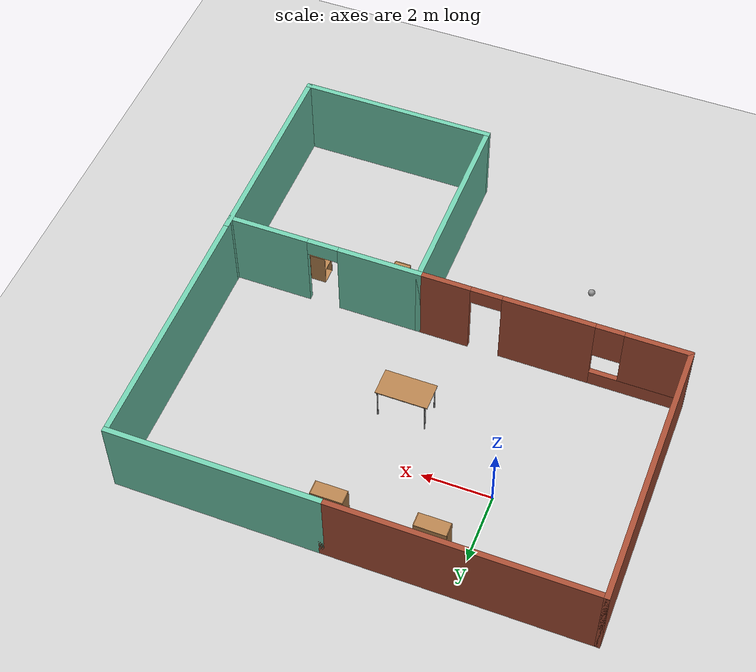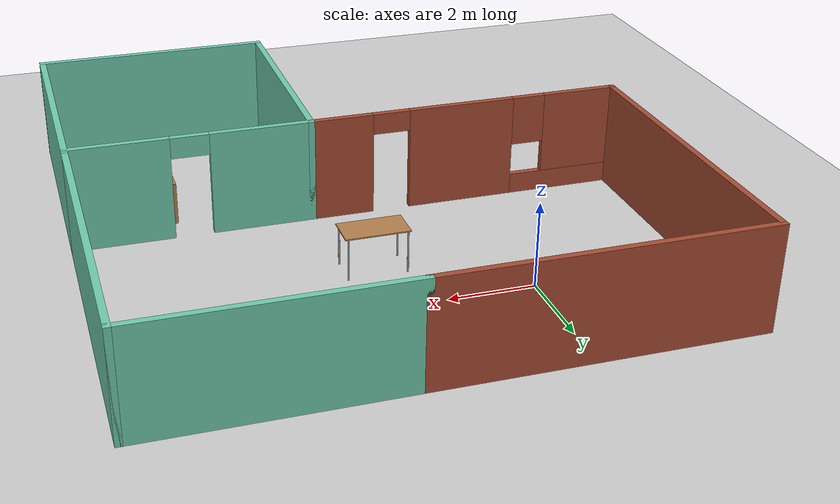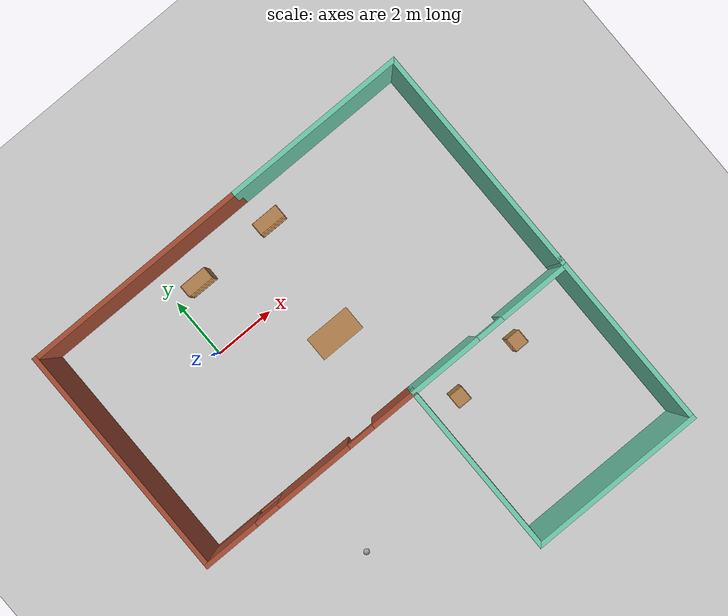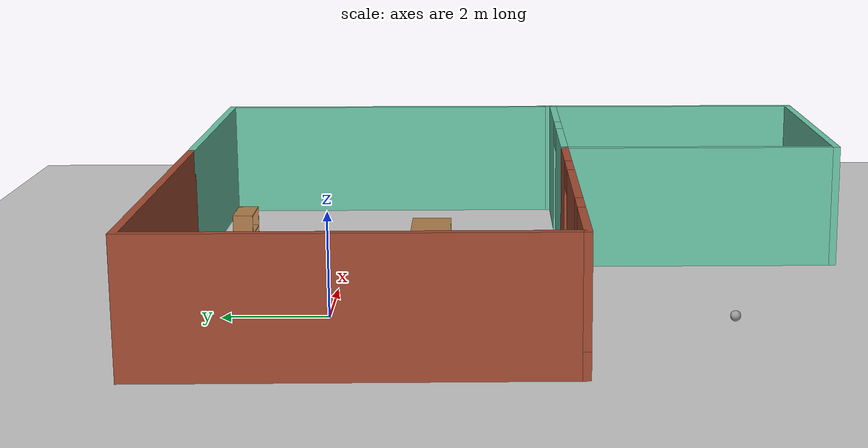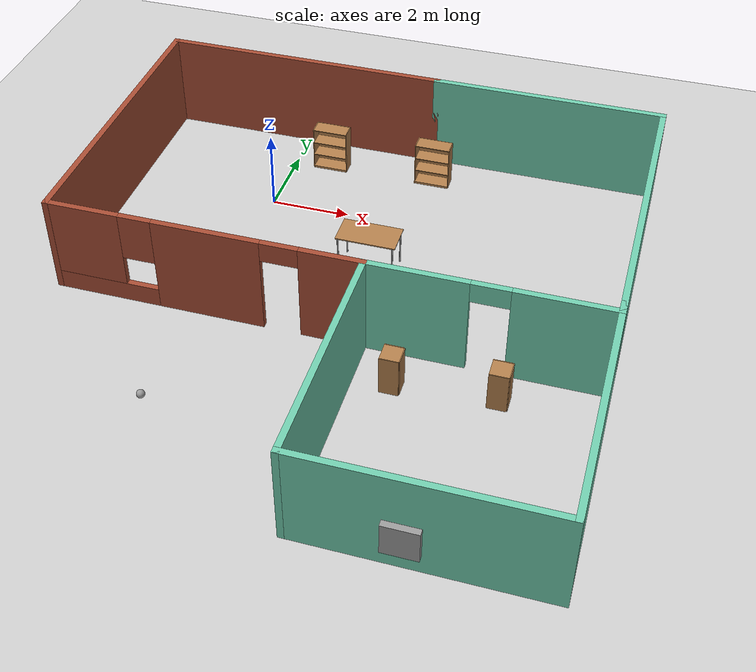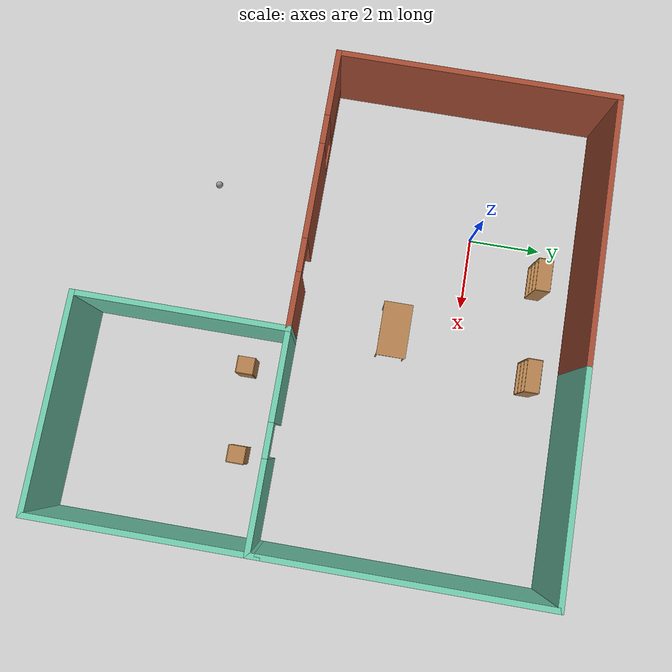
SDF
<sdf version="1.6">
 <world name="default">
  <plugin name="hello" filename="libhello.so"/>
  <light name="sun" type="directional">
   <pose>0 0 10 0 -0 0</pose>
   <diffuse>0.8 0.8 0.8 1</diffuse>
   <specular>0.2 0.2 0.2 1</specular>
   <attenuation>
    <range>1000</range>
    <constant>0.9</constant>
    <linear>0.01</linear>
    <quadratic>0.001</quadratic>
   </attenuation>
   <direction>-0.5 0.1 -0.9</direction>
  </light>
  <model name="ground_plane">
   <static>1</static>
   <link name="link">
    <collision name="collision">
     <geometry><plane><normal>0 0 1</normal><size>100 100</size></plane></geometry>
     <surface>
      <contact><collide_bitmask>65535</collide_bitmask></contact>
      <friction><ode><mu>100</mu><mu2>50</mu2></ode></friction>
     </surface>
    </collision>
    <visual name="visual">
     <cast_shadows>0</cast_shadows>
     <geometry><plane><normal>0 0 1</normal><size>100 100</size></plane></geometry>
     <material>
      <script><uri>file://media/materials/scripts/gazebo.material</uri><name>Gazebo/Grey</name></script>
     </material>
    </visual>
   </link>
  </model>
  <gravity>0 0 -9.8</gravity>
  <magnetic_field>6e-06 2.3e-05 -4.2e-05</magnetic_field>
  <atmosphere type="adiabatic"/>
  <physics name="default_physics" default="0" type="ode">
   <max_step_size>0.001</max_step_size>
   <real_time_factor>1</real_time_factor>
   <real_time_update_rate>1000</real_time_update_rate>
  </physics>
  <scene><ambient>0.4 0.4 0.4 1</ambient><background>0.7 0.7 0.7 1</background><shadows>1</shadows></scene>
  <audio><device>default</device></audio>
  <spherical_coordinates>
   <surface_model>EARTH_WGS84</surface_model>
   <latitude_deg>0</latitude_deg>
   <longitude_deg>0</longitude_deg>
   <elevation>0</elevation>
   <heading_deg>0</heading_deg>
  </spherical_coordinates>
  <model name="Building">
   <link name="Wall_0">
    <pose>-2.925 6.6 0 0 -0 0</pose>
    <visual name="Wall_0_Visual">
     <pose>0 0 1.25 0 -0 0</pose>
     <geometry><box><size>7.5 0.15 2.5</size></box></geometry>
     <material>
      <script><uri>file://media/materials/scripts/gazebo.material</uri><name>Gazebo/Bricks</name></script>
      <ambient>1 1 1 1</ambient>
     </material>
     <meta><layer>0</layer></meta>
    </visual>
    <collision name="Wall_0_Collision">
     <pose>0 0 1.25 0 -0 0</pose>
     <geometry><box><size>7.5 0.15 2.5</size></box></geometry>
     <surface>
      <friction>
       <ode><mu>1</mu><mu2>1</mu2><fdir1>0 0 0</fdir1><slip1>0</slip1><slip2>0</slip2></ode>
       <torsional>
        <coefficient>1</coefficient>
        <patch_radius>0</patch_radius>
        <surface_radius>0</surface_radius>
        <use_patch_radius>1</use_patch_radius>
        <ode><slip>0</slip></ode>
       </torsional>
      </friction>
      <bounce><restitution_coefficient>0</restitution_coefficient><threshold>1e+06</threshold></bounce>
      <contact>
       <collide_without_contact>0</collide_without_contact>
       <collide_without_contact_bitmask>1</collide_without_contact_bitmask>
       <collide_bitmask>1</collide_bitmask>
       <ode>
        <soft_cfm>0</soft_cfm>
        <soft_erp>0.2</soft_erp>
        <kp>1e+13</kp>
        <kd>1</kd>
        <max_vel>0.01</max_vel>
        <min_depth>0</min_depth>
       </ode>
       <bullet>
        <split_impulse>1</split_impulse>
        <split_impulse_penetration_threshold>-0.01</split_impulse_penetration_threshold>
        <soft_cfm>0</soft_cfm>
        <soft_erp>0.2</soft_erp>
        <kp>1e+13</kp>
        <kd>1</kd>
       </bullet>
      </contact>
     </surface>
    </collision>
   </link>
   <link name="Wall_1">
    <pose>3.675 6.6 0 0 -0 0</pose>
    <visual name="Wall_1_Visual">
     <pose>0 0 1.25 0 -0 0</pose>
     <geometry><box><size>6 0.15 2.5</size></box></geometry>
     <material>
      <script><uri>file://media/materials/scripts/gazebo.material</uri><name>Gazebo/Grey</name></script>
      <ambient>0.435294 0.796078 0.67451 1</ambient>
     </material>
     <meta><layer>0</layer></meta>
    </visual>
    <collision name="Wall_1_Collision">
     <pose>0 0 1.25 0 -0 0</pose>
     <geometry><box><size>6 0.15 2.5</size></box></geometry>
     <surface>
      <friction>
       <ode><mu>1</mu><mu2>1</mu2><fdir1>0 0 0</fdir1><slip1>0</slip1><slip2>0</slip2></ode>
       <torsional>
        <coefficient>1</coefficient>
        <patch_radius>0</patch_radius>
        <surface_radius>0</surface_radius>
        <use_patch_radius>1</use_patch_radius>
        <ode><slip>0</slip></ode>
       </torsional>
      </friction>
      <bounce><restitution_coefficient>0</restitution_coefficient><threshold>1e+06</threshold></bounce>
      <contact>
       <collide_without_contact>0</collide_without_contact>
       <collide_without_contact_bitmask>1</collide_without_contact_bitmask>
       <collide_bitmask>1</collide_bitmask>
       <ode>
        <soft_cfm>0</soft_cfm>
        <soft_erp>0.2</soft_erp>
        <kp>1e+13</kp>
        <kd>1</kd>
        <max_vel>0.01</max_vel>
        <min_depth>0</min_depth>
       </ode>
       <bullet>
        <split_impulse>1</split_impulse>
        <split_impulse_penetration_threshold>-0.01</split_impulse_penetration_threshold>
        <soft_cfm>0</soft_cfm>
        <soft_erp>0.2</soft_erp>
        <kp>1e+13</kp>
        <kd>1</kd>
       </bullet>
      </contact>
     </surface>
    </collision>
   </link>
   <link name="Wall_14">
    <pose>3.8 -1 0 0 -0 0</pose>
    <visual name="Wall_14_Visual_2">
     <pose>0.031268 0 2.25 0 -0 0</pose>
     <geometry><box><size>0.9 0.15 0.5</size></box></geometry>
     <material>
      <script><uri>file://media/materials/scripts/gazebo.material</uri><name>Gazebo/Grey</name></script>
      <ambient>0.435294 0.796078 0.67451 1</ambient>
     </material>
     <meta><layer>0</layer></meta>
    </visual>
    <visual name="Wall_14_Visual_0">
     <pose>-1.64687 0 1.25 0 -0 0</pose>
     <geometry><box><size>2.45627 0.15 2.5</size></box></geometry>
     <material>
      <script><uri>file://media/materials/scripts/gazebo.material</uri><name>Gazebo/Grey</name></script>
      <ambient>0.435294 0.796078 0.67451 1</ambient>
     </material>
     <meta><layer>0</layer></meta>
    </visual>
    <visual name="Wall_14_Visual_1">
     <pose>1.67813 0 1.25 0 -0 0</pose>
     <geometry><box><size>2.39373 0.15 2.5</size></box></geometry>
     <material>
      <script><uri>file://media/materials/scripts/gazebo.material</uri><name>Gazebo/Grey</name></script>
      <ambient>0.435294 0.796078 0.67451 1</ambient>
     </material>
     <meta><layer>0</layer></meta>
    </visual>
    <collision name="Wall_14_Collision_0">
     <pose>-1.64687 0 1.25 0 -0 0</pose>
     <geometry><box><size>2.45627 0.15 2.5</size></box></geometry>
     <surface>
      <friction>
       <ode><mu>1</mu><mu2>1</mu2><fdir1>0 0 0</fdir1><slip1>0</slip1><slip2>0</slip2></ode>
       <torsional>
        <coefficient>1</coefficient>
        <patch_radius>0</patch_radius>
        <surface_radius>0</surface_radius>
        <use_patch_radius>1</use_patch_radius>
        <ode><slip>0</slip></ode>
       </torsional>
      </friction>
      <bounce><restitution_coefficient>0</restitution_coefficient><threshold>1e+06</threshold></bounce>
      <contact>
       <collide_without_contact>0</collide_without_contact>
       <collide_without_contact_bitmask>1</collide_without_contact_bitmask>
       <collide_bitmask>1</collide_bitmask>
       <ode>
        <soft_cfm>0</soft_cfm>
        <soft_erp>0.2</soft_erp>
        <kp>1e+13</kp>
        <kd>1</kd>
        <max_vel>0.01</max_vel>
        <min_depth>0</min_depth>
       </ode>
       <bullet>
        <split_impulse>1</split_impulse>
        <split_impulse_penetration_threshold>-0.01</split_impulse_penetration_threshold>
        <soft_cfm>0</soft_cfm>
        <soft_erp>0.2</soft_erp>
        <kp>1e+13</kp>
        <kd>1</kd>
       </bullet>
      </contact>
     </surface>
    </collision>
    <collision name="Wall_14_Collision_1">
     <pose>1.67813 0 1.25 0 -0 0</pose>
     <geometry><box><size>2.39373 0.15 2.5</size></box></geometry>
     <surface>
      <friction>
       <ode><mu>1</mu><mu2>1</mu2><fdir1>0 0 0</fdir1><slip1>0</slip1><slip2>0</slip2></ode>
       <torsional>
        <coefficient>1</coefficient>
        <patch_radius>0</patch_radius>
        <surface_radius>0</surface_radius>
        <use_patch_radius>1</use_patch_radius>
        <ode><slip>0</slip></ode>
       </torsional>
      </friction>
      <bounce><restitution_coefficient>0</restitution_coefficient><threshold>1e+06</threshold></bounce>
      <contact>
       <collide_without_contact>0</collide_without_contact>
       <collide_without_contact_bitmask>1</collide_without_contact_bitmask>
       <collide_bitmask>1</collide_bitmask>
       <ode>
        <soft_cfm>0</soft_cfm>
        <soft_erp>0.2</soft_erp>
        <kp>1e+13</kp>
        <kd>1</kd>
        <max_vel>0.01</max_vel>
        <min_depth>0</min_depth>
       </ode>
       <bullet>
        <split_impulse>1</split_impulse>
        <split_impulse_penetration_threshold>-0.01</split_impulse_penetration_threshold>
        <soft_cfm>0</soft_cfm>
        <soft_erp>0.2</soft_erp>
        <kp>1e+13</kp>
        <kd>1</kd>
       </bullet>
      </contact>
     </surface>
    </collision>
    <collision name="Wall_14_Collision_2">
     <pose>0.031268 0 2.25 0 -0 0</pose>
     <geometry><box><size>0.9 0.15 0.5</size></box></geometry>
     <surface>
      <friction>
       <ode><mu>1</mu><mu2>1</mu2><fdir1>0 0 0</fdir1><slip1>0</slip1><slip2>0</slip2></ode>
       <torsional>
        <coefficient>1</coefficient>
        <patch_radius>0</patch_radius>
        <surface_radius>0</surface_radius>
        <use_patch_radius>1</use_patch_radius>
        <ode><slip>0</slip></ode>
       </torsional>
      </friction>
      <bounce><restitution_coefficient>0</restitution_coefficient><threshold>1e+06</threshold></bounce>
      <contact>
       <collide_without_contact>0</collide_without_contact>
       <collide_without_contact_bitmask>1</collide_without_contact_bitmask>
       <collide_bitmask>1</collide_bitmask>
       <ode>
        <soft_cfm>0</soft_cfm>
        <soft_erp>0.2</soft_erp>
        <kp>1e+13</kp>
        <kd>1</kd>
        <max_vel>0.01</max_vel>
        <min_depth>0</min_depth>
       </ode>
       <bullet>
        <split_impulse>1</split_impulse>
        <split_impulse_penetration_threshold>-0.01</split_impulse_penetration_threshold>
        <soft_cfm>0</soft_cfm>
        <soft_erp>0.2</soft_erp>
        <kp>1e+13</kp>
        <kd>1</kd>
       </bullet>
      </contact>
     </surface>
    </collision>
   </link>
   <link name="Wall_2">
    <pose>6.6 2.925 0 0 0 -1.5708</pose>
    <visual name="Wall_2_Visual">
     <pose>0 0 1.25 0 -0 0</pose>
     <geometry><box><size>7.5 0.15 2.5</size></box></geometry>
     <material>
      <script><uri>file://media/materials/scripts/gazebo.material</uri><name>Gazebo/Grey</name></script>
      <ambient>0.435294 0.796078 0.67451 1</ambient>
     </material>
     <meta><layer>0</layer></meta>
    </visual>
    <collision name="Wall_2_Collision">
     <pose>0 0 1.25 0 -0 0</pose>
     <geometry><box><size>7.5 0.15 2.5</size></box></geometry>
     <surface>
      <friction>
       <ode><mu>1</mu><mu2>1</mu2><fdir1>0 0 0</fdir1><slip1>0</slip1><slip2>0</slip2></ode>
       <torsional>
        <coefficient>1</coefficient>
        <patch_radius>0</patch_radius>
        <surface_radius>0</surface_radius>
        <use_patch_radius>1</use_patch_radius>
        <ode><slip>0</slip></ode>
       </torsional>
      </friction>
      <bounce><restitution_coefficient>0</restitution_coefficient><threshold>1e+06</threshold></bounce>
      <contact>
       <collide_without_contact>0</collide_without_contact>
       <collide_without_contact_bitmask>1</collide_without_contact_bitmask>
       <collide_bitmask>1</collide_bitmask>
       <ode>
        <soft_cfm>0</soft_cfm>
        <soft_erp>0.2</soft_erp>
        <kp>1e+13</kp>
        <kd>1</kd>
        <max_vel>0.01</max_vel>
        <min_depth>0</min_depth>
       </ode>
       <bullet>
        <split_impulse>1</split_impulse>
        <split_impulse_penetration_threshold>-0.01</split_impulse_penetration_threshold>
        <soft_cfm>0</soft_cfm>
        <soft_erp>0.2</soft_erp>
        <kp>1e+13</kp>
        <kd>1</kd>
       </bullet>
      </contact>
     </surface>
    </collision>
   </link>
   <link name="Wall_3">
    <pose>6.6 -3.675 0 0 0 -1.5708</pose>
    <visual name="Wall_3_Visual">
     <pose>0 0 1.25 0 -0 0</pose>
     <geometry><box><size>6 0.15 2.5</size></box></geometry>
     <material>
      <script><uri>file://media/materials/scripts/gazebo.material</uri><name>Gazebo/Grey</name></script>
      <ambient>0.435294 0.796078 0.67451 1</ambient>
     </material>
     <meta><layer>0</layer></meta>
    </visual>
    <collision name="Wall_3_Collision">
     <pose>0 0 1.25 0 -0 0</pose>
     <geometry><box><size>6 0.15 2.5</size></box></geometry>
     <surface>
      <friction>
       <ode><mu>1</mu><mu2>1</mu2><fdir1>0 0 0</fdir1><slip1>0</slip1><slip2>0</slip2></ode>
       <torsional>
        <coefficient>1</coefficient>
        <patch_radius>0</patch_radius>
        <surface_radius>0</surface_radius>
        <use_patch_radius>1</use_patch_radius>
        <ode><slip>0</slip></ode>
       </torsional>
      </friction>
      <bounce><restitution_coefficient>0</restitution_coefficient><threshold>1e+06</threshold></bounce>
      <contact>
       <collide_without_contact>0</collide_without_contact>
       <collide_without_contact_bitmask>1</collide_without_contact_bitmask>
       <collide_bitmask>1</collide_bitmask>
       <ode>
        <soft_cfm>0</soft_cfm>
        <soft_erp>0.2</soft_erp>
        <kp>1e+13</kp>
        <kd>1</kd>
        <max_vel>0.01</max_vel>
        <min_depth>0</min_depth>
       </ode>
       <bullet>
        <split_impulse>1</split_impulse>
        <split_impulse_penetration_threshold>-0.01</split_impulse_penetration_threshold>
        <soft_cfm>0</soft_cfm>
        <soft_erp>0.2</soft_erp>
        <kp>1e+13</kp>
        <kd>1</kd>
       </bullet>
      </contact>
     </surface>
    </collision>
   </link>
   <link name="Wall_4">
    <pose>3.8 -6.6 0 0 -0 3.14159</pose>
    <visual name="Wall_4_Visual">
     <pose>0 0 1.25 0 -0 0</pose>
     <geometry><box><size>5.75 0.15 2.5</size></box></geometry>
     <material>
      <script><uri>file://media/materials/scripts/gazebo.material</uri><name>Gazebo/Grey</name></script>
      <ambient>0.435294 0.796078 0.67451 1</ambient>
     </material>
     <meta><layer>0</layer></meta>
    </visual>
    <collision name="Wall_4_Collision">
     <pose>0 0 1.25 0 -0 0</pose>
     <geometry><box><size>5.75 0.15 2.5</size></box></geometry>
     <surface>
      <friction>
       <ode><mu>1</mu><mu2>1</mu2><fdir1>0 0 0</fdir1><slip1>0</slip1><slip2>0</slip2></ode>
       <torsional>
        <coefficient>1</coefficient>
        <patch_radius>0</patch_radius>
        <surface_radius>0</surface_radius>
        <use_patch_radius>1</use_patch_radius>
        <ode><slip>0</slip></ode>
       </torsional>
      </friction>
      <bounce><restitution_coefficient>0</restitution_coefficient><threshold>1e+06</threshold></bounce>
      <contact>
       <collide_without_contact>0</collide_without_contact>
       <collide_without_contact_bitmask>1</collide_without_contact_bitmask>
       <collide_bitmask>1</collide_bitmask>
       <ode>
        <soft_cfm>0</soft_cfm>
        <soft_erp>0.2</soft_erp>
        <kp>1e+13</kp>
        <kd>1</kd>
        <max_vel>0.01</max_vel>
        <min_depth>0</min_depth>
       </ode>
       <bullet>
        <split_impulse>1</split_impulse>
        <split_impulse_penetration_threshold>-0.01</split_impulse_penetration_threshold>
        <soft_cfm>0</soft_cfm>
        <soft_erp>0.2</soft_erp>
        <kp>1e+13</kp>
        <kd>1</kd>
       </bullet>
      </contact>
     </surface>
    </collision>
   </link>
   <link name="Wall_5">
    <pose>1 -3.8 0 0 -0 1.5708</pose>
    <visual name="Wall_5_Visual">
     <pose>0 0 1.25 0 -0 0</pose>
     <geometry><box><size>5.75 0.15 2.5</size></box></geometry>
     <material>
      <script><uri>file://media/materials/scripts/gazebo.material</uri><name>Gazebo/Grey</name></script>
      <ambient>0.435294 0.796078 0.67451 1</ambient>
     </material>
     <meta><layer>0</layer></meta>
    </visual>
    <collision name="Wall_5_Collision">
     <pose>0 0 1.25 0 -0 0</pose>
     <geometry><box><size>5.75 0.15 2.5</size></box></geometry>
     <surface>
      <friction>
       <ode><mu>1</mu><mu2>1</mu2><fdir1>0 0 0</fdir1><slip1>0</slip1><slip2>0</slip2></ode>
       <torsional>
        <coefficient>1</coefficient>
        <patch_radius>0</patch_radius>
        <surface_radius>0</surface_radius>
        <use_patch_radius>1</use_patch_radius>
        <ode><slip>0</slip></ode>
       </torsional>
      </friction>
      <bounce><restitution_coefficient>0</restitution_coefficient><threshold>1e+06</threshold></bounce>
      <contact>
       <collide_without_contact>0</collide_without_contact>
       <collide_without_contact_bitmask>1</collide_without_contact_bitmask>
       <collide_bitmask>1</collide_bitmask>
       <ode>
        <soft_cfm>0</soft_cfm>
        <soft_erp>0.2</soft_erp>
        <kp>1e+13</kp>
        <kd>1</kd>
        <max_vel>0.01</max_vel>
        <min_depth>0</min_depth>
       </ode>
       <bullet>
        <split_impulse>1</split_impulse>
        <split_impulse_penetration_threshold>-0.01</split_impulse_penetration_threshold>
        <soft_cfm>0</soft_cfm>
        <soft_erp>0.2</soft_erp>
        <kp>1e+13</kp>
        <kd>1</kd>
       </bullet>
      </contact>
     </surface>
    </collision>
   </link>
   <link name="Wall_6">
    <pose>-2.8 -1 0 0 -0 3.14159</pose>
    <visual name="Wall_6_Visual_0">
     <pose>-3.0921 0 1.25 0 -0 0</pose>
     <geometry><box><size>1.56581 0.15 2.5</size></box></geometry>
     <material>
      <script><uri>file://media/materials/scripts/gazebo.material</uri><name>Gazebo/Bricks</name></script>
      <ambient>1 1 1 1</ambient>
     </material>
     <meta><layer>0</layer></meta>
    </visual>
    <visual name="Wall_6_Visual_1">
     <pose>-0.105844 0 1.25 0 -0 0</pose>
     <geometry><box><size>2.6067 0.15 2.5</size></box></geometry>
     <material>
      <script><uri>file://media/materials/scripts/gazebo.material</uri><name>Gazebo/Bricks</name></script>
      <ambient>1 1 1 1</ambient>
     </material>
     <meta><layer>0</layer></meta>
    </visual>
    <visual name="Wall_6_Visual_2">
     <pose>2.53625 0 0.25 0 -0 0</pose>
     <geometry><box><size>2.6775 0.15 0.5</size></box></geometry>
     <material>
      <script><uri>file://media/materials/scripts/gazebo.material</uri><name>Gazebo/Bricks</name></script>
      <ambient>1 1 1 1</ambient>
     </material>
     <meta><layer>0</layer></meta>
    </visual>
    <visual name="Wall_6_Visual_3">
     <pose>2.93625 0 1.5 0 -0 0</pose>
     <geometry><box><size>1.8775 0.15 2</size></box></geometry>
     <material>
      <script><uri>file://media/materials/scripts/gazebo.material</uri><name>Gazebo/Bricks</name></script>
      <ambient>1 1 1 1</ambient>
     </material>
     <meta><layer>0</layer></meta>
    </visual>
    <visual name="Wall_6_Visual_4">
     <pose>1.5975 0 1.9 0 -0 0</pose>
     <geometry><box><size>0.8 0.15 1.2</size></box></geometry>
     <material>
      <script><uri>file://media/materials/scripts/gazebo.material</uri><name>Gazebo/Bricks</name></script>
      <ambient>1 1 1 1</ambient>
     </material>
     <meta><layer>0</layer></meta>
    </visual>
    <visual name="Wall_6_Visual_5">
     <pose>-1.85919 0 2.25 0 -0 0</pose>
     <geometry><box><size>0.9 0.15 0.5</size></box></geometry>
     <material>
      <script><uri>file://media/materials/scripts/gazebo.material</uri><name>Gazebo/Bricks</name></script>
      <ambient>1 1 1 1</ambient>
     </material>
     <meta><layer>0</layer></meta>
    </visual>
    <collision name="Wall_6_Collision_0">
     <pose>-3.0921 0 1.25 0 -0 0</pose>
     <geometry><box><size>1.56581 0.15 2.5</size></box></geometry>
     <surface>
      <friction>
       <ode><mu>1</mu><mu2>1</mu2><fdir1>0 0 0</fdir1><slip1>0</slip1><slip2>0</slip2></ode>
       <torsional>
        <coefficient>1</coefficient>
        <patch_radius>0</patch_radius>
        <surface_radius>0</surface_radius>
        <use_patch_radius>1</use_patch_radius>
        <ode><slip>0</slip></ode>
       </torsional>
      </friction>
      <bounce><restitution_coefficient>0</restitution_coefficient><threshold>1e+06</threshold></bounce>
      <contact>
       <collide_without_contact>0</collide_without_contact>
       <collide_without_contact_bitmask>1</collide_without_contact_bitmask>
       <collide_bitmask>1</collide_bitmask>
       <ode>
        <soft_cfm>0</soft_cfm>
        <soft_erp>0.2</soft_erp>
        <kp>1e+13</kp>
        <kd>1</kd>
        <max_vel>0.01</max_vel>
        <min_depth>0</min_depth>
       </ode>
       <bullet>
        <split_impulse>1</split_impulse>
        <split_impulse_penetration_threshold>-0.01</split_impulse_penetration_threshold>
        <soft_cfm>0</soft_cfm>
        <soft_erp>0.2</soft_erp>
        <kp>1e+13</kp>
        <kd>1</kd>
       </bullet>
      </contact>
     </surface>
    </collision>
    <collision name="Wall_6_Collision_1">
     <pose>-0.105844 0 1.25 0 -0 0</pose>
     <geometry><box><size>2.6067 0.15 2.5</size></box></geometry>
     <surface>
      <friction>
       <ode><mu>1</mu><mu2>1</mu2><fdir1>0 0 0</fdir1><slip1>0</slip1><slip2>0</slip2></ode>
       <torsional>
        <coefficient>1</coefficient>
        <patch_radius>0</patch_radius>
        <surface_radius>0</surface_radius>
        <use_patch_radius>1</use_patch_radius>
        <ode><slip>0</slip></ode>
       </torsional>
      </friction>
      <bounce><restitution_coefficient>0</restitution_coefficient><threshold>1e+06</threshold></bounce>
      <contact>
       <collide_without_contact>0</collide_without_contact>
       <collide_without_contact_bitmask>1</collide_without_contact_bitmask>
       <collide_bitmask>1</collide_bitmask>
       <ode>
        <soft_cfm>0</soft_cfm>
        <soft_erp>0.2</soft_erp>
        <kp>1e+13</kp>
        <kd>1</kd>
        <max_vel>0.01</max_vel>
        <min_depth>0</min_depth>
       </ode>
       <bullet>
        <split_impulse>1</split_impulse>
        <split_impulse_penetration_threshold>-0.01</split_impulse_penetration_threshold>
        <soft_cfm>0</soft_cfm>
        <soft_erp>0.2</soft_erp>
        <kp>1e+13</kp>
        <kd>1</kd>
       </bullet>
      </contact>
     </surface>
    </collision>
    <collision name="Wall_6_Collision_2">
     <pose>2.53625 0 0.25 0 -0 0</pose>
     <geometry><box><size>2.6775 0.15 0.5</size></box></geometry>
     <surface>
      <friction>
       <ode><mu>1</mu><mu2>1</mu2><fdir1>0 0 0</fdir1><slip1>0</slip1><slip2>0</slip2></ode>
       <torsional>
        <coefficient>1</coefficient>
        <patch_radius>0</patch_radius>
        <surface_radius>0</surface_radius>
        <use_patch_radius>1</use_patch_radius>
        <ode><slip>0</slip></ode>
       </torsional>
      </friction>
      <bounce><restitution_coefficient>0</restitution_coefficient><threshold>1e+06</threshold></bounce>
      <contact>
       <collide_without_contact>0</collide_without_contact>
       <collide_without_contact_bitmask>1</collide_without_contact_bitmask>
       <collide_bitmask>1</collide_bitmask>
       <ode>
        <soft_cfm>0</soft_cfm>
        <soft_erp>0.2</soft_erp>
        <kp>1e+13</kp>
        <kd>1</kd>
        <max_vel>0.01</max_vel>
        <min_depth>0</min_depth>
       </ode>
       <bullet>
        <split_impulse>1</split_impulse>
        <split_impulse_penetration_threshold>-0.01</split_impulse_penetration_threshold>
        <soft_cfm>0</soft_cfm>
        <soft_erp>0.2</soft_erp>
        <kp>1e+13</kp>
        <kd>1</kd>
       </bullet>
      </contact>
     </surface>
    </collision>
    <collision name="Wall_6_Collision_4">
     <pose>1.5975 0 1.9 0 -0 0</pose>
     <geometry><box><size>0.8 0.15 1.2</size></box></geometry>
     <surface>
      <friction>
       <ode><mu>1</mu><mu2>1</mu2><fdir1>0 0 0</fdir1><slip1>0</slip1><slip2>0</slip2></ode>
       <torsional>
        <coefficient>1</coefficient>
        <patch_radius>0</patch_radius>
        <surface_radius>0</surface_radius>
        <use_patch_radius>1</use_patch_radius>
        <ode><slip>0</slip></ode>
       </torsional>
      </friction>
      <bounce><restitution_coefficient>0</restitution_coefficient><threshold>1e+06</threshold></bounce>
      <contact>
       <collide_without_contact>0</collide_without_contact>
       <collide_without_contact_bitmask>1</collide_without_contact_bitmask>
       <collide_bitmask>1</collide_bitmask>
       <ode>
        <soft_cfm>0</soft_cfm>
        <soft_erp>0.2</soft_erp>
        <kp>1e+13</kp>
        <kd>1</kd>
        <max_vel>0.01</max_vel>
        <min_depth>0</min_depth>
       </ode>
       <bullet>
        <split_impulse>1</split_impulse>
        <split_impulse_penetration_threshold>-0.01</split_impulse_penetration_threshold>
        <soft_cfm>0</soft_cfm>
        <soft_erp>0.2</soft_erp>
        <kp>1e+13</kp>
        <kd>1</kd>
       </bullet>
      </contact>
     </surface>
    </collision>
    <collision name="Wall_6_Collision_3">
     <pose>2.93625 0 1.5 0 -0 0</pose>
     <geometry><box><size>1.8775 0.15 2</size></box></geometry>
     <surface>
      <friction>
       <ode><mu>1</mu><mu2>1</mu2><fdir1>0 0 0</fdir1><slip1>0</slip1><slip2>0</slip2></ode>
       <torsional>
        <coefficient>1</coefficient>
        <patch_radius>0</patch_radius>
        <surface_radius>0</surface_radius>
        <use_patch_radius>1</use_patch_radius>
        <ode><slip>0</slip></ode>
       </torsional>
      </friction>
      <bounce><restitution_coefficient>0</restitution_coefficient><threshold>1e+06</threshold></bounce>
      <contact>
       <collide_without_contact>0</collide_without_contact>
       <collide_without_contact_bitmask>1</collide_without_contact_bitmask>
       <collide_bitmask>1</collide_bitmask>
       <ode>
        <soft_cfm>0</soft_cfm>
        <soft_erp>0.2</soft_erp>
        <kp>1e+13</kp>
        <kd>1</kd>
        <max_vel>0.01</max_vel>
        <min_depth>0</min_depth>
       </ode>
       <bullet>
        <split_impulse>1</split_impulse>
        <split_impulse_penetration_threshold>-0.01</split_impulse_penetration_threshold>
        <soft_cfm>0</soft_cfm>
        <soft_erp>0.2</soft_erp>
        <kp>1e+13</kp>
        <kd>1</kd>
       </bullet>
      </contact>
     </surface>
    </collision>
    <collision name="Wall_6_Collision_5">
     <pose>-1.85919 0 2.25 0 -0 0</pose>
     <geometry><box><size>0.9 0.15 0.5</size></box></geometry>
     <surface>
      <friction>
       <ode><mu>1</mu><mu2>1</mu2><fdir1>0 0 0</fdir1><slip1>0</slip1><slip2>0</slip2></ode>
       <torsional>
        <coefficient>1</coefficient>
        <patch_radius>0</patch_radius>
        <surface_radius>0</surface_radius>
        <use_patch_radius>1</use_patch_radius>
        <ode><slip>0</slip></ode>
       </torsional>
      </friction>
      <bounce><restitution_coefficient>0</restitution_coefficient><threshold>1e+06</threshold></bounce>
      <contact>
       <collide_without_contact>0</collide_without_contact>
       <collide_without_contact_bitmask>1</collide_without_contact_bitmask>
       <collide_bitmask>1</collide_bitmask>
       <ode>
        <soft_cfm>0</soft_cfm>
        <soft_erp>0.2</soft_erp>
        <kp>1e+13</kp>
        <kd>1</kd>
        <max_vel>0.01</max_vel>
        <min_depth>0</min_depth>
       </ode>
       <bullet>
        <split_impulse>1</split_impulse>
        <split_impulse_penetration_threshold>-0.01</split_impulse_penetration_threshold>
        <soft_cfm>0</soft_cfm>
        <soft_erp>0.2</soft_erp>
        <kp>1e+13</kp>
        <kd>1</kd>
       </bullet>
      </contact>
     </surface>
    </collision>
   </link>
   <link name="Wall_7">
    <pose>-6.6 2.8 0 0 -0 1.5708</pose>
    <visual name="Wall_7_Visual">
     <pose>0 0 1.25 0 -0 0</pose>
     <geometry><box><size>7.75 0.15 2.5</size></box></geometry>
     <material>
      <script><uri>file://media/materials/scripts/gazebo.material</uri><name>Gazebo/Bricks</name></script>
      <ambient>1 1 1 1</ambient>
     </material>
     <meta><layer>0</layer></meta>
    </visual>
    <collision name="Wall_7_Collision">
     <pose>0 0 1.25 0 -0 0</pose>
     <geometry><box><size>7.75 0.15 2.5</size></box></geometry>
     <surface>
      <friction>
       <ode><mu>1</mu><mu2>1</mu2><fdir1>0 0 0</fdir1><slip1>0</slip1><slip2>0</slip2></ode>
       <torsional>
        <coefficient>1</coefficient>
        <patch_radius>0</patch_radius>
        <surface_radius>0</surface_radius>
        <use_patch_radius>1</use_patch_radius>
        <ode><slip>0</slip></ode>
       </torsional>
      </friction>
      <bounce><restitution_coefficient>0</restitution_coefficient><threshold>1e+06</threshold></bounce>
      <contact>
       <collide_without_contact>0</collide_without_contact>
       <collide_without_contact_bitmask>1</collide_without_contact_bitmask>
       <collide_bitmask>1</collide_bitmask>
       <ode>
        <soft_cfm>0</soft_cfm>
        <soft_erp>0.2</soft_erp>
        <kp>1e+13</kp>
        <kd>1</kd>
        <max_vel>0.01</max_vel>
        <min_depth>0</min_depth>
       </ode>
       <bullet>
        <split_impulse>1</split_impulse>
        <split_impulse_penetration_threshold>-0.01</split_impulse_penetration_threshold>
        <soft_cfm>0</soft_cfm>
        <soft_erp>0.2</soft_erp>
        <kp>1e+13</kp>
        <kd>1</kd>
       </bullet>
      </contact>
     </surface>
    </collision>
   </link>
   <link name="Window_1">
    <pose>3.43359 -6.73734 0.5 0 -0 0</pose>
    <visual name="Window_1_Visual">
     <pose>0 0 0.4 0 -0 0</pose>
     <geometry><box><size>0.8 0.17 0.8</size></box></geometry>
     <material>
      <script><uri>file://media/materials/scripts/gazebo.material</uri><name>Gazebo/Grey</name></script>
     </material>
    </visual>
    <collision name="Window_1_Collision">
     <pose>0 0 0.4 0 -0 0</pose>
     <geometry><box><size>0.8 0.17 0.8</size></box></geometry>
     <surface>
      <friction>
       <ode><mu>1</mu><mu2>1</mu2><fdir1>0 0 0</fdir1><slip1>0</slip1><slip2>0</slip2></ode>
       <torsional>
        <coefficient>1</coefficient>
        <patch_radius>0</patch_radius>
        <surface_radius>0</surface_radius>
        <use_patch_radius>1</use_patch_radius>
        <ode><slip>0</slip></ode>
       </torsional>
      </friction>
      <bounce><restitution_coefficient>0</restitution_coefficient><threshold>1e+06</threshold></bounce>
      <contact>
       <collide_without_contact>0</collide_without_contact>
       <collide_without_contact_bitmask>1</collide_without_contact_bitmask>
       <collide_bitmask>1</collide_bitmask>
       <ode>
        <soft_cfm>0</soft_cfm>
        <soft_erp>0.2</soft_erp>
        <kp>1e+13</kp>
        <kd>1</kd>
        <max_vel>0.01</max_vel>
        <min_depth>0</min_depth>
       </ode>
       <bullet>
        <split_impulse>1</split_impulse>
        <split_impulse_penetration_threshold>-0.01</split_impulse_penetration_threshold>
        <soft_cfm>0</soft_cfm>
        <soft_erp>0.2</soft_erp>
        <kp>1e+13</kp>
        <kd>1</kd>
       </bullet>
      </contact>
     </surface>
    </collision>
   </link>
   <static>1</static>
   <pose>2.78516 -3.53369 0 0 -0 0</pose>
  </model>
  <model name="bookshelf">
   <static>1</static>
   <link name="link">
    <inertial><mass>1</mass></inertial>
    <collision name="back">
     <pose>0 0.005 0.6 0 -0 0</pose>
     <geometry><box><size>0.9 0.01 1.2</size></box></geometry>
    </collision>
    <visual name="visual1">
     <pose>0 0.005 0.6 0 -0 0</pose>
     <geometry><box><size>0.9 0.01 1.2</size></box></geometry>
     <material>
      <script><uri>file://media/materials/scripts/gazebo.material</uri><name>Gazebo/Wood</name></script>
     </material>
    </visual>
    <collision name="left_side">
     <pose>0.45 -0.195 0.6 0 -0 0</pose>
     <geometry><box><size>0.02 0.4 1.2</size></box></geometry>
    </collision>
    <visual name="visual2">
     <pose>0.45 -0.195 0.6 0 -0 0</pose>
     <geometry><box><size>0.02 0.4 1.2</size></box></geometry>
     <material>
      <script><uri>file://media/materials/scripts/gazebo.material</uri><name>Gazebo/Wood</name></script>
     </material>
    </visual>
    <collision name="right_side">
     <pose>-0.45 -0.195 0.6 0 -0 0</pose>
     <geometry><box><size>0.02 0.4 1.2</size></box></geometry>
    </collision>
    <visual name="visual3">
     <pose>-0.45 -0.195 0.6 0 -0 0</pose>
     <geometry><box><size>0.02 0.4 1.2</size></box></geometry>
     <material>
      <script><uri>file://media/materials/scripts/gazebo.material</uri><name>Gazebo/Wood</name></script>
     </material>
    </visual>
    <collision name="bottom">
     <pose>0 -0.195 0.03 0 -0 0</pose>
     <geometry><box><size>0.88 0.4 0.06</size></box></geometry>
    </collision>
    <visual name="visual4">
     <pose>0 -0.195 0.03 0 -0 0</pose>
     <geometry><box><size>0.88 0.4 0.06</size></box></geometry>
     <material>
      <script><uri>file://media/materials/scripts/gazebo.material</uri><name>Gazebo/Wood</name></script>
     </material>
    </visual>
    <collision name="top">
     <pose>0 -0.195 1.19 0 -0 0</pose>
     <geometry><box><size>0.88 0.4 0.02</size></box></geometry>
    </collision>
    <visual name="visual5">
     <pose>0 -0.195 1.19 0 -0 0</pose>
     <geometry><box><size>0.88 0.4 0.02</size></box></geometry>
     <material>
      <script><uri>file://media/materials/scripts/gazebo.material</uri><name>Gazebo/Wood</name></script>
     </material>
    </visual>
    <collision name="low_shelf">
     <pose>0 -0.195 0.43 0 -0 0</pose>
     <geometry><box><size>0.88 0.4 0.02</size></box></geometry>
    </collision>
    <visual name="visual6">
     <pose>0 -0.195 0.43 0 -0 0</pose>
     <geometry><box><size>0.88 0.4 0.02</size></box></geometry>
     <material>
      <script><uri>file://media/materials/scripts/gazebo.material</uri><name>Gazebo/Wood</name></script>
     </material>
    </visual>
    <collision name="high_shelf">
     <pose>0 -0.195 0.8 0 -0 0</pose>
     <geometry><box><size>0.88 0.4 0.02</size></box></geometry>
    </collision>
    <visual name="visual7">
     <pose>0 -0.195 0.8 0 -0 0</pose>
     <geometry><box><size>0.88 0.4 0.02</size></box></geometry>
     <material>
      <script><uri>file://media/materials/scripts/gazebo.material</uri><name>Gazebo/Wood</name></script>
     </material>
    </visual>
   </link>
   <pose>0.96399 2.17087 0 0 -0 0</pose>
  </model>
  <model name="bookshelf_0">
   <static>1</static>
   <link name="link">
    <inertial><mass>1</mass></inertial>
    <collision name="back">
     <pose>0 0.005 0.6 0 -0 0</pose>
     <geometry><box><size>0.9 0.01 1.2</size></box></geometry>
    </collision>
    <visual name="visual1">
     <pose>0 0.005 0.6 0 -0 0</pose>
     <geometry><box><size>0.9 0.01 1.2</size></box></geometry>
     <material>
      <script><uri>file://media/materials/scripts/gazebo.material</uri><name>Gazebo/Wood</name></script>
     </material>
    </visual>
    <collision name="left_side">
     <pose>0.45 -0.195 0.6 0 -0 0</pose>
     <geometry><box><size>0.02 0.4 1.2</size></box></geometry>
    </collision>
    <visual name="visual2">
     <pose>0.45 -0.195 0.6 0 -0 0</pose>
     <geometry><box><size>0.02 0.4 1.2</size></box></geometry>
     <material>
      <script><uri>file://media/materials/scripts/gazebo.material</uri><name>Gazebo/Wood</name></script>
     </material>
    </visual>
    <collision name="right_side">
     <pose>-0.45 -0.195 0.6 0 -0 0</pose>
     <geometry><box><size>0.02 0.4 1.2</size></box></geometry>
    </collision>
    <visual name="visual3">
     <pose>-0.45 -0.195 0.6 0 -0 0</pose>
     <geometry><box><size>0.02 0.4 1.2</size></box></geometry>
     <material>
      <script><uri>file://media/materials/scripts/gazebo.material</uri><name>Gazebo/Wood</name></script>
     </material>
    </visual>
    <collision name="bottom">
     <pose>0 -0.195 0.03 0 -0 0</pose>
     <geometry><box><size>0.88 0.4 0.06</size></box></geometry>
    </collision>
    <visual name="visual4">
     <pose>0 -0.195 0.03 0 -0 0</pose>
     <geometry><box><size>0.88 0.4 0.06</size></box></geometry>
     <material>
      <script><uri>file://media/materials/scripts/gazebo.material</uri><name>Gazebo/Wood</name></script>
     </material>
    </visual>
    <collision name="top">
     <pose>0 -0.195 1.19 0 -0 0</pose>
     <geometry><box><size>0.88 0.4 0.02</size></box></geometry>
    </collision>
    <visual name="visual5">
     <pose>0 -0.195 1.19 0 -0 0</pose>
     <geometry><box><size>0.88 0.4 0.02</size></box></geometry>
     <material>
      <script><uri>file://media/materials/scripts/gazebo.material</uri><name>Gazebo/Wood</name></script>
     </material>
    </visual>
    <collision name="low_shelf">
     <pose>0 -0.195 0.43 0 -0 0</pose>
     <geometry><box><size>0.88 0.4 0.02</size></box></geometry>
    </collision>
    <visual name="visual6">
     <pose>0 -0.195 0.43 0 -0 0</pose>
     <geometry><box><size>0.88 0.4 0.02</size></box></geometry>
     <material>
      <script><uri>file://media/materials/scripts/gazebo.material</uri><name>Gazebo/Wood</name></script>
     </material>
    </visual>
    <collision name="high_shelf">
     <pose>0 -0.195 0.8 0 -0 0</pose>
     <geometry><box><size>0.88 0.4 0.02</size></box></geometry>
    </collision>
    <visual name="visual7">
     <pose>0 -0.195 0.8 0 -0 0</pose>
     <geometry><box><size>0.88 0.4 0.02</size></box></geometry>
     <material>
      <script><uri>file://media/materials/scripts/gazebo.material</uri><name>Gazebo/Wood</name></script>
     </material>
    </visual>
   </link>
   <pose>3.75542 2.22657 0 0 -0 0</pose>
  </model>
  <model name="cabinet">
   <static>1</static>
   <link name="cabinet_bottom_plate">
    <inertial>
     <pose>0 0 -1 0 -0 0</pose>
     <inertia><ixx>2.05</ixx><ixy>0</ixy><ixz>0</ixz><iyy>2.05</iyy><iyz>0</iyz><izz>2.05</izz></inertia>
     <mass>25</mass>
    </inertial>
    <collision name="cabinet_bottom_plate_geom">
     <pose>0 0 0.01 0 -0 0</pose>
     <geometry><box><size>0.45 0.45 0.02</size></box></geometry>
    </collision>
    <visual name="cabinet_bottom_plate_geom_visual">
     <pose>0 0 0.01 0 -0 0</pose>
     <geometry><box><size>0.45 0.45 0.02</size></box></geometry>
     <material>
      <script><uri>file://media/materials/scripts/gazebo.material</uri><name>Gazebo/Wood</name></script>
     </material>
    </visual>
    <collision name="cabinet_bottom_plate_geom_cabinet_back_plate">
     <pose>0.235 0 0.51 0 -0 0</pose>
     <geometry><box><size>0.02 0.45 1.02</size></box></geometry>
    </collision>
    <visual name="cabinet_bottom_plate_geom_cabinet_back_plate_visual">
     <pose>0.235 0 0.51 0 -0 0</pose>
     <geometry><box><size>0.02 0.45 1.02</size></box></geometry>
     <material>
      <script><uri>file://media/materials/scripts/gazebo.material</uri><name>Gazebo/Wood</name></script>
     </material>
    </visual>
    <collision name="cabinet_bottom_plate_geom_cabinet_left_plate">
     <pose>0 0.235 0.51 0 -0 0</pose>
     <geometry><box><size>0.45 0.02 1.02</size></box></geometry>
    </collision>
    <visual name="cabinet_bottom_plate_geom_cabinet_left_plate_visual">
     <pose>0 0.235 0.51 0 -0 0</pose>
     <geometry><box><size>0.45 0.02 1.02</size></box></geometry>
     <material>
      <script><uri>file://media/materials/scripts/gazebo.material</uri><name>Gazebo/Wood</name></script>
     </material>
    </visual>
    <collision name="cabinet_bottom_plate_geom_cabinet_middle_plate">
     <pose>0 0 0.51 0 -0 0</pose>
     <geometry><box><size>0.45 0.45 0.02</size></box></geometry>
    </collision>
    <visual name="cabinet_bottom_plate_geom_cabinet_middle_plate_visual">
     <pose>0 0 0.51 0 -0 0</pose>
     <geometry><box><size>0.45 0.45 0.02</size></box></geometry>
     <material>
      <script><uri>file://media/materials/scripts/gazebo.material</uri><name>Gazebo/Wood</name></script>
     </material>
    </visual>
    <collision name="cabinet_bottom_plate_geom_cabinet_right_plate">
     <pose>0 -0.235 0.51 0 -0 0</pose>
     <geometry><box><size>0.45 0.02 1.02</size></box></geometry>
    </collision>
    <visual name="cabinet_bottom_plate_geom_cabinet_right_plate_visual">
     <pose>0 -0.235 0.51 0 -0 0</pose>
     <geometry><box><size>0.45 0.02 1.02</size></box></geometry>
     <material>
      <script><uri>file://media/materials/scripts/gazebo.material</uri><name>Gazebo/Wood</name></script>
     </material>
    </visual>
    <collision name="cabinet_bottom_plate_geom_cabinet_top_plate">
     <pose>0 0 1.01 0 -0 0</pose>
     <geometry><box><size>0.45 0.45 0.02</size></box></geometry>
    </collision>
    <visual name="cabinet_bottom_plate_geom_cabinet_top_plate_visual">
     <pose>0 0 1.01 0 -0 0</pose>
     <geometry><box><size>0.45 0.45 0.02</size></box></geometry>
     <material>
      <script><uri>file://media/materials/scripts/gazebo.material</uri><name>Gazebo/Wood</name></script>
     </material>
    </visual>
   </link>
   <pose>4.74503 -5.62237 0 0 -0 0</pose>
  </model>
  <model name="cabinet_0">
   <static>1</static>
   <link name="cabinet_bottom_plate">
    <inertial>
     <pose>0 0 -1 0 -0 0</pose>
     <inertia><ixx>2.05</ixx><ixy>0</ixy><ixz>0</ixz><iyy>2.05</iyy><iyz>0</iyz><izz>2.05</izz></inertia>
     <mass>25</mass>
    </inertial>
    <collision name="cabinet_bottom_plate_geom">
     <pose>0 0 0.01 0 -0 0</pose>
     <geometry><box><size>0.45 0.45 0.02</size></box></geometry>
    </collision>
    <visual name="cabinet_bottom_plate_geom_visual">
     <pose>0 0 0.01 0 -0 0</pose>
     <geometry><box><size>0.45 0.45 0.02</size></box></geometry>
     <material>
      <script><uri>file://media/materials/scripts/gazebo.material</uri><name>Gazebo/Wood</name></script>
     </material>
    </visual>
    <collision name="cabinet_bottom_plate_geom_cabinet_back_plate">
     <pose>0.235 0 0.51 0 -0 0</pose>
     <geometry><box><size>0.02 0.45 1.02</size></box></geometry>
    </collision>
    <visual name="cabinet_bottom_plate_geom_cabinet_back_plate_visual">
     <pose>0.235 0 0.51 0 -0 0</pose>
     <geometry><box><size>0.02 0.45 1.02</size></box></geometry>
     <material>
      <script><uri>file://media/materials/scripts/gazebo.material</uri><name>Gazebo/Wood</name></script>
     </material>
    </visual>
    <collision name="cabinet_bottom_plate_geom_cabinet_left_plate">
     <pose>0 0.235 0.51 0 -0 0</pose>
     <geometry><box><size>0.45 0.02 1.02</size></box></geometry>
    </collision>
    <visual name="cabinet_bottom_plate_geom_cabinet_left_plate_visual">
     <pose>0 0.235 0.51 0 -0 0</pose>
     <geometry><box><size>0.45 0.02 1.02</size></box></geometry>
     <material>
      <script><uri>file://media/materials/scripts/gazebo.material</uri><name>Gazebo/Wood</name></script>
     </material>
    </visual>
    <collision name="cabinet_bottom_plate_geom_cabinet_middle_plate">
     <pose>0 0 0.51 0 -0 0</pose>
     <geometry><box><size>0.45 0.45 0.02</size></box></geometry>
    </collision>
    <visual name="cabinet_bottom_plate_geom_cabinet_middle_plate_visual">
     <pose>0 0 0.51 0 -0 0</pose>
     <geometry><box><size>0.45 0.45 0.02</size></box></geometry>
     <material>
      <script><uri>file://media/materials/scripts/gazebo.material</uri><name>Gazebo/Wood</name></script>
     </material>
    </visual>
    <collision name="cabinet_bottom_plate_geom_cabinet_right_plate">
     <pose>0 -0.235 0.51 0 -0 0</pose>
     <geometry><box><size>0.45 0.02 1.02</size></box></geometry>
    </collision>
    <visual name="cabinet_bottom_plate_geom_cabinet_right_plate_visual">
     <pose>0 -0.235 0.51 0 -0 0</pose>
     <geometry><box><size>0.45 0.02 1.02</size></box></geometry>
     <material>
      <script><uri>file://media/materials/scripts/gazebo.material</uri><name>Gazebo/Wood</name></script>
     </material>
    </visual>
    <collision name="cabinet_bottom_plate_geom_cabinet_top_plate">
     <pose>0 0 1.01 0 -0 0</pose>
     <geometry><box><size>0.45 0.45 0.02</size></box></geometry>
    </collision>
    <visual name="cabinet_bottom_plate_geom_cabinet_top_plate_visual">
     <pose>0 0 1.01 0 -0 0</pose>
     <geometry><box><size>0.45 0.45 0.02</size></box></geometry>
     <material>
      <script><uri>file://media/materials/scripts/gazebo.material</uri><name>Gazebo/Wood</name></script>
     </material>
    </visual>
   </link>
   <pose>7.11565 -5.4218 0 0 -0 0</pose>
  </model>
  <model name="table">
   <static>1</static>
   <link name="link">
    <collision name="surface">
     <pose>0 0 1 0 -0 0</pose>
     <geometry><box><size>1.5 0.8 0.03</size></box></geometry>
     <surface><friction><ode><mu>0.6</mu><mu2>0.6</mu2></ode></friction></surface>
    </collision>
    <visual name="visual1">
     <pose>0 0 1 0 -0 0</pose>
     <geometry><box><size>1.5 0.8 0.03</size></box></geometry>
     <material>
      <script><uri>file://media/materials/scripts/gazebo.material</uri><name>Gazebo/Wood</name></script>
     </material>
    </visual>
    <collision name="front_left_leg">
     <pose>0.68 0.38 0.5 0 -0 0</pose>
     <geometry><cylinder><radius>0.02</radius><length>1</length></cylinder></geometry>
    </collision>
    <visual name="front_left_leg">
     <pose>0.68 0.38 0.5 0 -0 0</pose>
     <geometry><cylinder><radius>0.02</radius><length>1</length></cylinder></geometry>
     <material>
      <script><uri>file://media/materials/scripts/gazebo.material</uri><name>Gazebo/Grey</name></script>
     </material>
    </visual>
    <collision name="front_right_leg">
     <pose>0.68 -0.38 0.5 0 -0 0</pose>
     <geometry><cylinder><radius>0.02</radius><length>1</length></cylinder></geometry>
    </collision>
    <visual name="front_right_leg">
     <pose>0.68 -0.38 0.5 0 -0 0</pose>
     <geometry><cylinder><radius>0.02</radius><length>1</length></cylinder></geometry>
     <material>
      <script><uri>file://media/materials/scripts/gazebo.material</uri><name>Gazebo/Grey</name></script>
     </material>
    </visual>
    <collision name="back_right_leg">
     <pose>-0.68 -0.38 0.5 0 -0 0</pose>
     <geometry><cylinder><radius>0.02</radius><length>1</length></cylinder></geometry>
    </collision>
    <visual name="back_right_leg">
     <pose>-0.68 -0.38 0.5 0 -0 0</pose>
     <geometry><cylinder><radius>0.02</radius><length>1</length></cylinder></geometry>
     <material>
      <script><uri>file://media/materials/scripts/gazebo.material</uri><name>Gazebo/Grey</name></script>
     </material>
    </visual>
    <collision name="back_left_leg">
     <pose>-0.68 0.38 0.5 0 -0 0</pose>
     <geometry><cylinder><radius>0.02</radius><length>1</length></cylinder></geometry>
    </collision>
    <visual name="back_left_leg">
     <pose>-0.68 0.38 0.5 0 -0 0</pose>
     <geometry><cylinder><radius>0.02</radius><length>1</length></cylinder></geometry>
     <material>
      <script><uri>file://media/materials/scripts/gazebo.material</uri><name>Gazebo/Grey</name></script>
     </material>
    </visual>
   </link>
   <pose>3.11463 -1.80049 0 0 -0 0</pose>
  </model>
  <model name="my_ball">
   <link name="link_0">
    <inertial>
     <mass>1</mass>
     <inertia><ixx>0.1</ixx><ixy>0</ixy><ixz>0</ixz><iyy>0.1</iyy><iyz>0</iyz><izz>0.1</izz></inertia>
    </inertial>
    <visual name="visual">
     <geometry><sphere><radius>0.1</radius></sphere></geometry>
     <material>
      <lighting>1</lighting>
      <script><uri>file://media/materials/scripts/gazebo.material</uri><name>Gazebo/Grey</name></script>
      <shader type="pixel"><normal_map>__default__</normal_map></shader>
      <ambient>1 1 1 1</ambient>
      <diffuse>1 1 1 1</diffuse>
      <specular>1 1 1 1</specular>
      <emissive>1 1 1 1</emissive>
     </material>
    </visual>
    <collision name="collision">
     <geometry><sphere><radius>0.1</radius></sphere></geometry>
     <surface>
      <friction>
       <ode><mu>1</mu><mu2>1</mu2><fdir1>0 0 0</fdir1><slip1>0</slip1><slip2>0</slip2></ode>
       <torsional>
        <coefficient>1</coefficient>
        <patch_radius>0</patch_radius>
        <surface_radius>0</surface_radius>
        <use_patch_radius>1</use_patch_radius>
        <ode><slip>0</slip></ode>
       </torsional>
      </friction>
      <bounce><restitution_coefficient>0</restitution_coefficient><threshold>1e+06</threshold></bounce>
      <contact>
       <collide_without_contact>0</collide_without_contact>
       <collide_without_contact_bitmask>1</collide_without_contact_bitmask>
       <collide_bitmask>1</collide_bitmask>
       <ode>
        <soft_cfm>0</soft_cfm>
        <soft_erp>0.2</soft_erp>
        <kp>1e+13</kp>
        <kd>1</kd>
        <max_vel>0.01</max_vel>
        <min_depth>0</min_depth>
       </ode>
       <bullet>
        <split_impulse>1</split_impulse>
        <split_impulse_penetration_threshold>-0.01</split_impulse_penetration_threshold>
        <soft_cfm>0</soft_cfm>
        <soft_erp>0.2</soft_erp>
        <kp>1e+13</kp>
        <kd>1</kd>
       </bullet>
      </contact>
     </surface>
    </collision>
   </link>
   <static>0</static>
   <pose>-0.418062 -7.48517 0.1 0 -0 0</pose>
  </model>
 </world>
</sdf>
